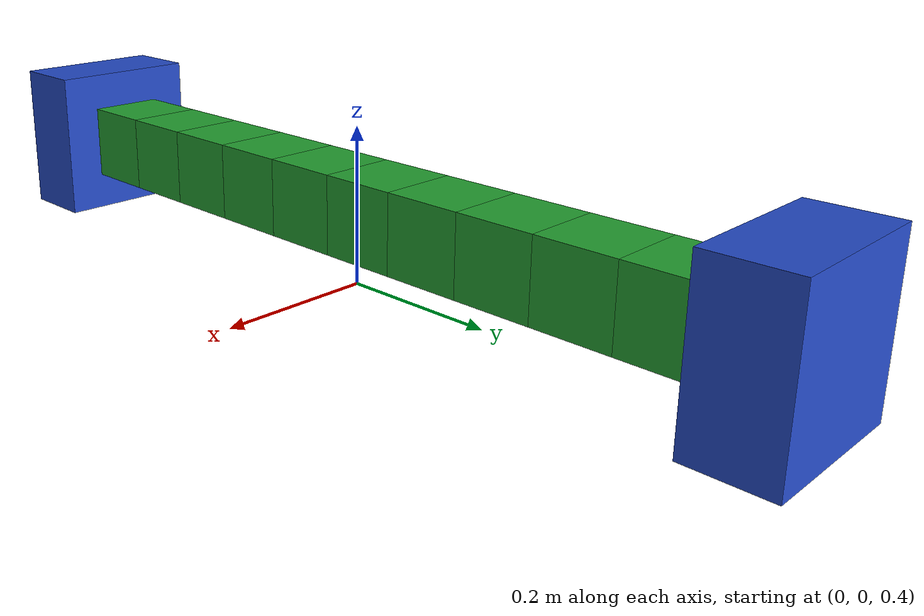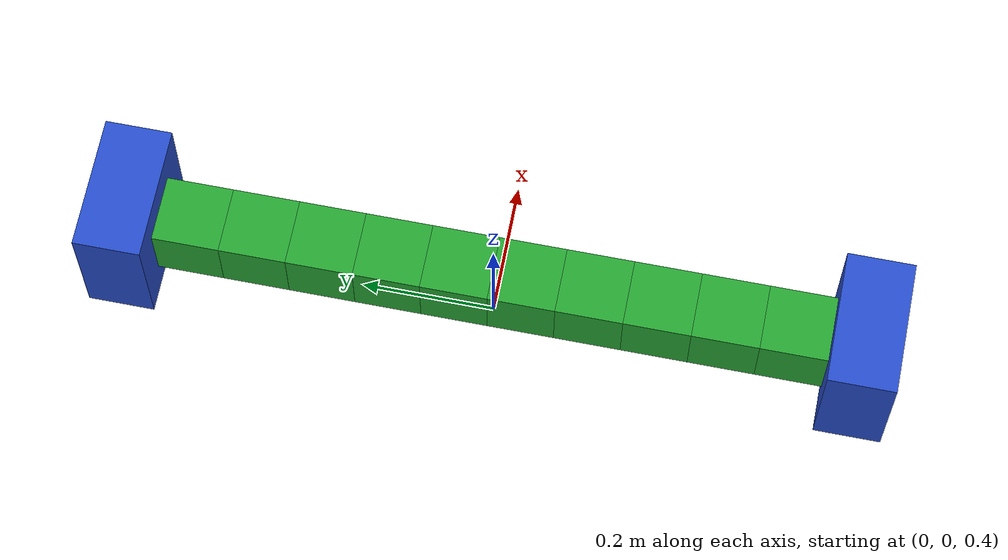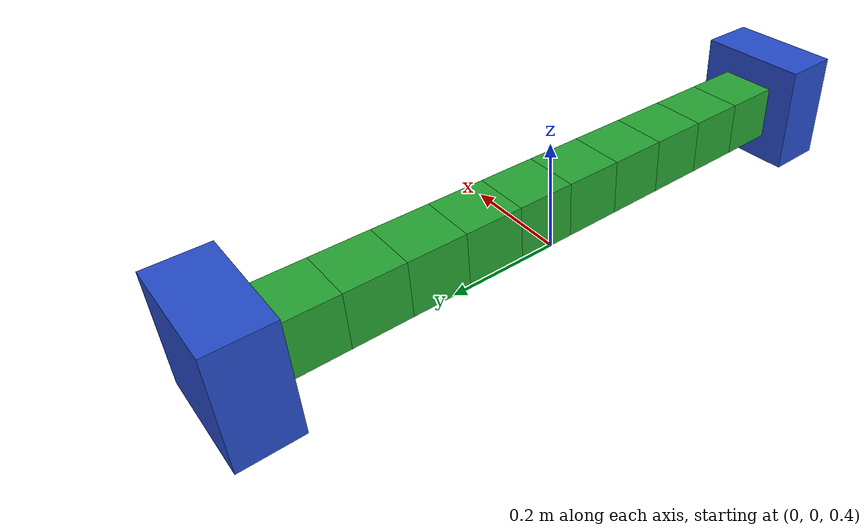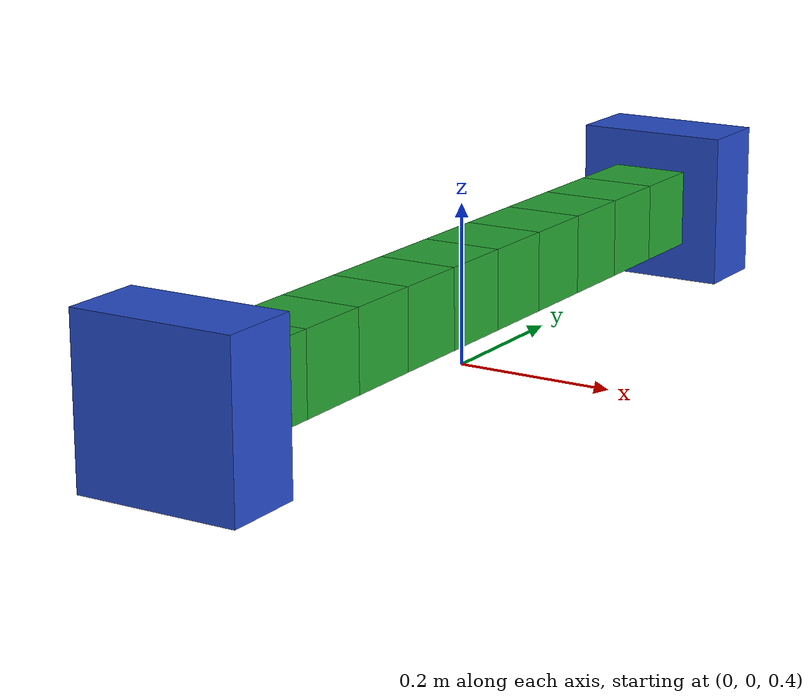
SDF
<?xml version="1.0" ?>
<sdf version="1.5">
  <world name="ten-block">
    <include>
      <uri>model://sun</uri>
    </include>
    <include>
      <uri>file://models/robot-ten-block</uri>
      <pose>0 0 0.5 0 0 0</pose>
    </include>
    <include>
      <uri>file://models/block</uri>
      <pose>0 0.45 0.5 0 0 0</pose>
    </include>
    <include>
      <uri>file://models/block</uri>
      <pose>0 0.35 0.5 0 0 0</pose>
    </include>
    <include>
      <uri>file://models/block</uri>
      <pose>0 0.25 0.5 0 0 0</pose>
    </include>
    <include>
      <uri>file://models/block</uri>
      <pose>0 0.15 0.5 0 0 0</pose>
    </include>
    <include>
      <uri>file://models/block</uri>
      <pose>0 0.05 0.5 0 0 0</pose>
    </include>
    <include>
      <uri>file://models/block</uri>
      <pose>0 -0.05 0.5 0 0 0</pose>
    </include>
    <include>
      <uri>file://models/block</uri>
      <pose>0 -0.15 0.5 0 0 0</pose>
    </include>
    <include>
      <uri>file://models/block</uri>
      <pose>0 -0.25 0.5 0 0 0</pose>
    </include>
    <include>
      <uri>file://models/block</uri>
      <pose>0 -0.35 0.5 0 0 0</pose>
    </include>
    <include>
      <uri>file://models/block</uri>
      <pose>0 -0.45 0.5 0 0 0</pose>
    </include>
    <gui>
      <camera name='user_camera'>
        <pose>0.869229 -0.96475 1.07624 -1.5287e-17 0.535643 2.36019</pose>
        <view_controller>orbit</view_controller>
      </camera>
    </gui>
  </world>
</sdf>

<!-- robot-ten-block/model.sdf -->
<sdf version="1.4">
  <model name="robot">
    <link name="root">
      <pose>0 0 0 0 0 0</pose>
    </link>
    <link name="gripper_l">
      <pose>0 -0.55 0 0 0 0</pose>
      <self_collide>true</self_collide>
      <inertial>
        <pose>0 0 0 0 0 0</pose>
        <inertia>
          <ixx>6.667</ixx>
          <ixy>0</ixy>
          <ixz>0</ixz>
          <iyy>6.667</iyy>
          <iyz>0</iyz>
          <izz>6.667</izz>
        </inertia>
        <mass>1.0</mass>
      </inertial>
      <collision name="gripper_l_col">
        <pose>0 0 0 0 0 0</pose>
        <geometry>
          <box>
            <size>0.2 0.1 0.2</size>
          </box>
        </geometry>
        <surface>
          <friction>
            <ode>
              <mu>1e8</mu>
              <mu2>1e8</mu2>
              <fdir1>0 0 0</fdir1>
              <slip1>0.0</slip1>
              <slip2>0.0</slip2>
            </ode>
            <bullet>
              <friction>1e8</friction>
              <friction2>1e8</friction2>
              <fdir1>0 0 0</fdir1>
              <rolling_friction>1e8</rolling_friction>
            </bullet>
          </friction>
        </surface>
      </collision>
      <visual name="gripper_l_vis">
        <pose>0 0 0 0 0 0</pose>
        <geometry>
          <box>
            <size>0.2 0.1 0.2</size>
          </box>
        </geometry>
        <material>
          <script>
            <uri>file://media/materials/scripts/gazebo.material</uri>
            <name>Gazebo/Blue</name>
          </script>
        </material>
      </visual>
    </link>

    <link name="gripper_r">
      <pose>0 0.55 0 0 0 0</pose>
      <self_collide>true</self_collide>
      <inertial>
        <pose>0 0 0 0 0 0</pose>
        <inertia>
          <ixx>6.667</ixx>
          <ixy>0</ixy>
          <ixz>0</ixz>
          <iyy>6.667</iyy>
          <iyz>0</iyz>
          <izz>6.667</izz>
        </inertia>
        <mass>1.0</mass>
      </inertial>
      <collision name="gripper_r_col">
        <pose>0 0 0 0 0 0</pose>
        <geometry>
          <box>
            <size>0.2 0.1 0.2</size>
          </box>
        </geometry>
        <surface>
          <friction>
            <ode>
              <mu>1e8</mu>
              <mu2>1e8</mu2>
              <fdir1>0 0 0</fdir1>
              <slip1>0.0</slip1>
              <slip2>0.0</slip2>
            </ode>
            <bullet>
              <friction>1e8</friction>
              <friction2>1e8</friction2>
              <fdir1>0 0 0</fdir1>
              <rolling_friction>1e8</rolling_friction>
            </bullet>
          </friction>
        </surface>
      </collision>
      <visual name="gripper_r_vis">
        <pose>0 0 0 0 0 0</pose>
        <geometry>
          <box>
            <size>0.2 0.1 0.2</size>
          </box>
        </geometry>
        <material>
          <script>
            <uri>file://media/materials/scripts/gazebo.material</uri>
            <name>Gazebo/Blue</name>
          </script>
        </material>
      </visual>
    </link>

    <joint name="fixed" type="revolute">
      <parent>world</parent>
      <child>root</child>
      <pose>0 0 0 0 0 0</pose>
      <axis>
        <xyz>0 0 1</xyz>
        <limit>
          <upper>0</upper>
          <lower>0</lower>
        </limit>
        <dynamics>
          <damping>1.0</damping>
        </dynamics>
      </axis>
      <physics>
        <ode>
          <cfm_damping>1</cfm_damping>
        </ode>
      </physics>
    </joint>

    <joint name="actuator_l" type="prismatic">
      <parent>root</parent>
      <child>gripper_l</child>
      <axis>
        <dynamics>
          <damping>0.0</damping>
          <friction>0.0</friction>
        </dynamics>
        <xyz>0 1 0</xyz>
        <limit>
          <lower>0</lower>
          <upper>0.5</upper>
        </limit>
      </axis>
    </joint>

    <joint name="actuator_r" type="prismatic">
      <parent>root</parent>
      <child>gripper_r</child>
      <axis>
        <dynamics>
          <damping>0.0</damping>
          <friction>0.0</friction>
        </dynamics>
        <xyz>0 1 0</xyz>
        <limit>
          <lower>-0.5</lower>
          <upper>0</upper>
        </limit>
      </axis>
    </joint>

    <plugin name='multiblock-controller' filename='libmultiblock-controller.so'>
    </plugin>

  </model>
</sdf>

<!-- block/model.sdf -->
<sdf version="1.5">
  <model name="block">
    <link name="body">
      <self_collide>true</self_collide>
      <pose>0 0 0 0 0 0</pose>
      <inertial>
        <pose>0 0 0 0 0 0</pose>
        <inertia>
          <ixx>0.0016667</ixx>
          <ixy>0</ixy>
          <ixz>0</ixz>
          <iyy>0.0016667</iyy>
          <iyz>0</iyz>
          <izz>0.0016667</izz>
        </inertia>
        <mass>1.0</mass>
      </inertial>
      <collision name="body_col">
        <pose>0 0 0 0 0 0</pose>
        <geometry>
          <box>
            <size>0.1 0.1 0.1</size>
          </box>
        </geometry>
        <surface>
          <friction>
            <ode>
              <mu>1e8</mu>
              <mu2>1e8</mu2>
              <fdir1>0 0 0</fdir1>
              <slip1>0.0</slip1>
              <slip2>0.0</slip2>
            </ode>
            <bullet>
              <friction>1e8</friction>
              <friction2>1e8</friction2>
              <fdir1>0 0 0</fdir1>
              <rolling_friction>1e8</rolling_friction>
            </bullet>
          </friction>
        </surface>
      </collision>
      <visual name="body_vis">
        <pose>0 0 0 0 0 0</pose>
        <geometry>
          <box>
            <size>0.1 0.1 0.1</size>
          </box>
        </geometry>
        <material>
          <script>
            <uri>file://media/materials/scripts/gazebo.material</uri>
            <name>Gazebo/Green</name>
          </script>
        </material>
      </visual>
    </link>
  </model>
</sdf>
